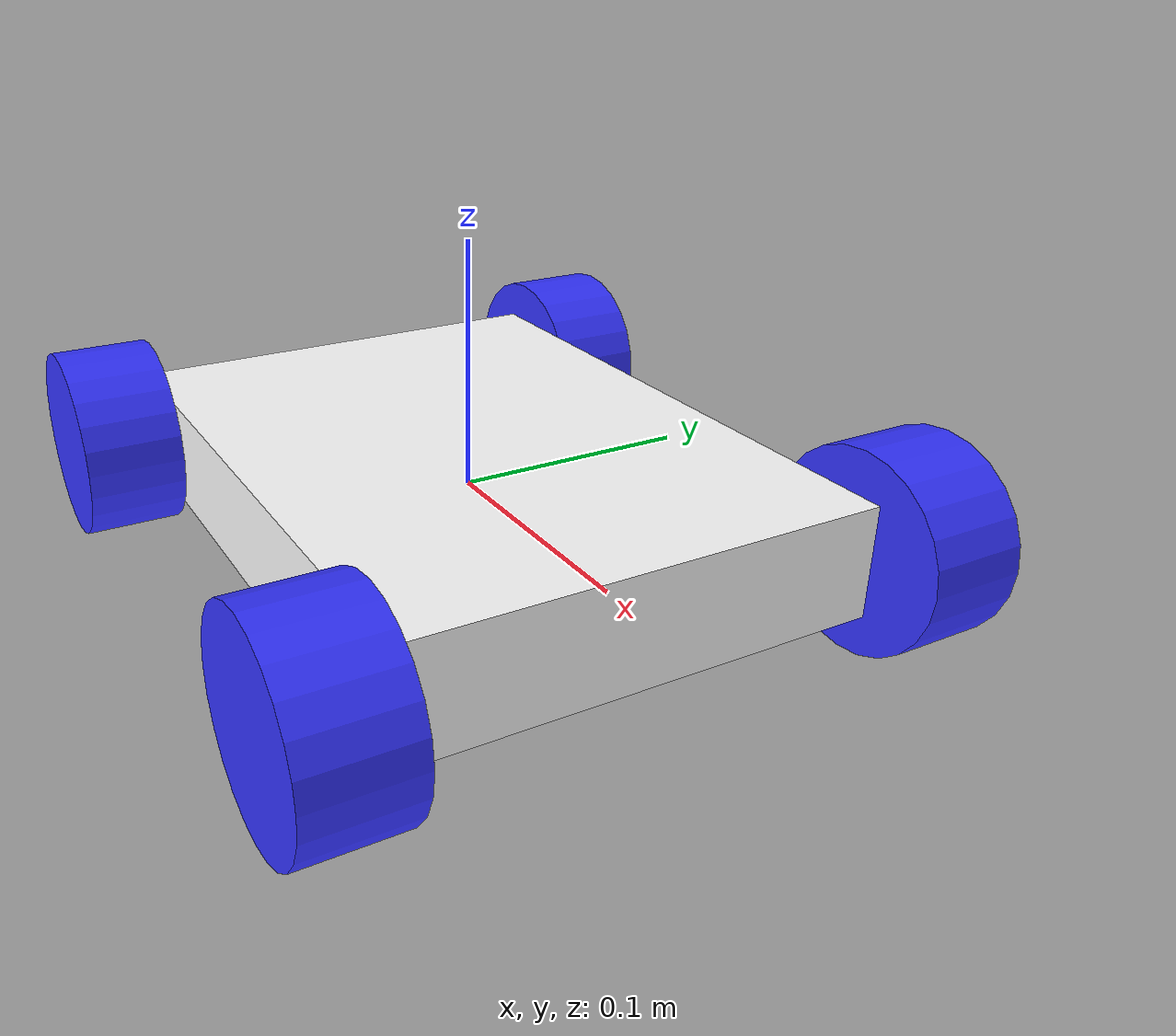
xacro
<?xml version="1.0"?>
<robot xmlns:xacro="http://www.ros.org/wiki/xacro">

    <xacro:include filename="inertial_macros.xacro"/>

    <material name="Black">
        <color rgba="0 0 0 1"/>
    </material>

    <material name="Orange">
        <color rgba="1 0.3 0.1 1"/>
    </material>

    <material name="Blue">
        <color rgba="0.2 0.2 1 1"/>
    </material>

    <material name="White">
        <color rgba="1 1 1 1"/>
    </material>

    <!-- Base Link-->

    <link name="base_link">

    </link>

    <!-- Chassis link -->

    <joint name="chassis_joint" type="fixed">
        <parent link="base_link"/>
        <child link="chassis"/>
        <origin xyz="0 0 0"/>
    </joint>

    <link name="chassis">
        <visual>
            <geometry>
                <box size="0.255 0.19 0.045 "/>
            </geometry>
            <material name="White"/>
        </visual>

        <collision>
            <geometry>
                <box size="0.255 0.19 0.045 "/>
            </geometry>
        </collision>

        <xacro:inertial_box mass="0.5" x="0.255" y="0.19" z="0.045">
            <origin xyz="0 0 0" rpy="0 0 0"/>
        </xacro:inertial_box>
    </link>

    <gazebo referece="chassis">
        <material>Gazebo/White</material>
    </gazebo>

    <!-- front wheel -->

    <joint name="front_left_wheel_joint" type="continuous">
        <parent link="base_link"/>
        <child link="front_left_wheel"/>
        <origin xyz="0.1175 0.115 0" rpy="-${pi/2} 0 0"/>
        <axis xyz="0 0 1"/>
    </joint>

    <link name="front_left_wheel">
        <visual>
            <geometry>
                <cylinder radius="0.04" length="0.04"/>
            </geometry>
            <material name="Blue"/>
        </visual>
        <collision>
            <geometry>
                <cylinder radius="0.04" length="0.04"/>
            </geometry>
        </collision>
        <xacro:inertial_cylinder mass="0.1" length="0.04" radius="0.04">
            <origin xyz="0 0 0" rpy="0 0 0"/>
        </xacro:inertial_cylinder>
    </link>

    <gazebo referece="front_left_wheel">
        <material>Gazebo/Blue</material>
    </gazebo>

    <joint name="front_right_wheel_joint" type="continuous">
        <parent link="base_link"/>
        <child link="front_right_wheel"/>
        <origin xyz="0.1175 -0.115 0" rpy="${pi/2} 0 0"/>
        <axis xyz="0 0 1"/>
    </joint>

    <link name="front_right_wheel">
        <visual>
            <geometry>
                <cylinder radius="0.04" length="0.04"/>
            </geometry>
            <material name="Blue"/>
        </visual>
        <collision>
            <geometry>
                <cylinder radius="0.04" length="0.04"/>
            </geometry>
        </collision>
        <xacro:inertial_cylinder mass="0.1" length="0.04" radius="0.04">
            <origin xyz="0 0 0" rpy="0 0 0"/>
        </xacro:inertial_cylinder>
    </link>

    <gazebo referece="front_right_wheel">
        <material>Gazebo/Blue</material>
    </gazebo>

    <!-- rear wheel -->

    <joint name="rear_left_wheel_joint" type="continuous">
        <parent link="base_link"/>
        <child link="rear_left_wheel"/>
        <origin xyz="-0.1175 0.115 0" rpy="-${pi/2} 0 0"/>
        <axis xyz="0 0 1"/>
    </joint>

    <link name="rear_left_wheel">
        <visual>
            <geometry>
                <cylinder radius="0.04" length="0.04"/>
            </geometry>
            <material name="Blue"/>
        </visual>
        <collision>
            <geometry>
                <cylinder radius="0.04" length="0.04"/>
            </geometry>
        </collision>
        <xacro:inertial_cylinder mass="0.1" length="0.04" radius="0.04">
            <origin xyz="0 0 0" rpy="0 0 0"/>
        </xacro:inertial_cylinder>
    </link>

    <gazebo referece="rear_left_wheel">
        <material>Gazebo/Blue</material>
    </gazebo>

    <joint name="rear_right_wheel_joint" type="continuous">
        <parent link="base_link"/>
        <child link="rear_right_wheel"/>
        <origin xyz="-0.1175 -0.115 0" rpy="${pi/2} 0 0"/>
        <axis xyz="0 0 1"/>
    </joint>

    <link name="rear_right_wheel">
        <visual>
            <geometry>
                <cylinder radius="0.04" length="0.04"/>
            </geometry>
            <material name="Blue"/>
        </visual>
        <collision>
            <geometry>
                <cylinder radius="0.04" length="0.04"/>
            </geometry>
        </collision>
        <xacro:inertial_cylinder mass="0.1" length="0.04" radius="0.04">
            <origin xyz="0 0 0" rpy="0 0 0"/>
        </xacro:inertial_cylinder>
    </link>

    <gazebo referece="rear_right_wheel">
        <material>Gazebo/Blue</material>
    </gazebo>

</robot>
